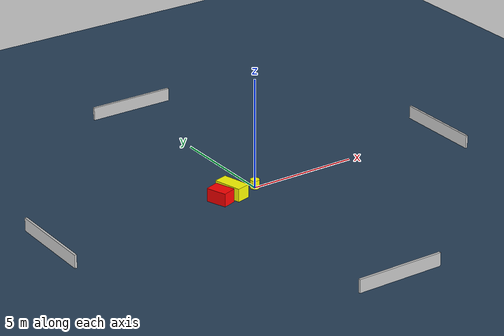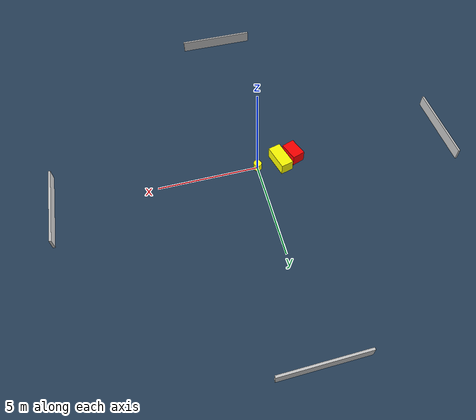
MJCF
<?xml version="1.0" ?>
<mujoco model="generated_environment">
  <option timestep="0.01" integrator="RK4" cone="elliptic"/>
  <default>
    <geom density="1"/>
  </default>
  <asset>
    <texture builtin="gradient" height="3072" name="skybox" rgb1="0.3 0.5 0.7" rgb2="0 0 0" type="skybox" width="512"/>
    <texture builtin="checker" height="300" name="groundplane" rgb1="0.2 0.3 0.4" rgb2="0.1 0.2 0.3" type="2d" width="300"/>
    <material name="groundplane" reflectance="0.2" texrepeat="5 5" texture="groundplane"/>
  </asset>
  <worldbody>
    <light dir="0 0 -1" directional="true" pos="0 0 1.5"/>
    <geom condim="3" friction="0.5 0.005 0.001" material="groundplane" name="floor" pos="0 0 0" size="0 0 0.05" type="plane"/>
    <body name="walls">
      <geom name="wall_1" condim="4" pos="-10.0 0.0 0.3" rgba="0.800000011920929 0.800000011920929 0.800000011920929 1.0" size="0.05 2.0 0.3" type="box"/>
      <geom name="wall_2" condim="4" pos="10.0 0.0 0.3" rgba="0.800000011920929 0.800000011920929 0.800000011920929 1.0" size="0.05 2.0 0.3" type="box"/>
      <geom name="wall_3" condim="4" pos="0.0 -10.0 0.3" rgba="0.800000011920929 0.800000011920929 0.800000011920929 1.0" size="2.0 0.05 0.3" type="box"/>
      <geom name="wall_4" condim="4" pos="0.0 10.0 0.3" rgba="0.800000011920929 0.800000011920929 0.800000011920929 1.0" size="2.0 0.05 0.3" type="box"/>
    </body>
    <body name="robot">
      <joint name="joint_x" type="slide" pos="0 0 0" axis="1 0 0"/>
      <joint name="joint_y" type="slide" pos="0 0 0" axis="0 1 0"/>
      <geom name="robot" type="cylinder" pos="0.0 0.0 0.2" size="0.2 0.2 0.0" mass="5.0" friction="1.0 0.005 0.0001" condim="4" rgba="1.0 1.0 0.0 1.0"/>
    </body>
    <body name="obstacle_1_movable">
      <geom name="obstacle_1_movable" condim="4" pos="-1.2110879773610173 -0.04765285262625068 0.3" euler="0 0 284.8084060229721" friction="0.0 0.005 0.001" rgba="1.0 1.0 0.0 1.0" size="0.6555071073402458 0.31706621104167637 0.3" type="box" mass="0.1"/>
      <joint type="free"/>
    </body>
    <body name="obstacle_2_static">
      <geom name="obstacle_2_static" condim="4" pos="-1.9390465358004576 -0.2698366344788498 0.3" euler="0 0 109.13057329926464" friction="0.0 0.005 0.001" rgba="1.0 0.0 0.0 1.0" size="0.4754604287415832 0.32311625291070145 0.3" type="box"/>
    </body>
  </worldbody>
  <actuator>
    <motor name="actuator_x" joint="joint_x" gear="1" ctrlrange="-1 1"/>
    <motor name="actuator_y" joint="joint_y" gear="1" ctrlrange="-1 1"/>
  </actuator>
</mujoco>
